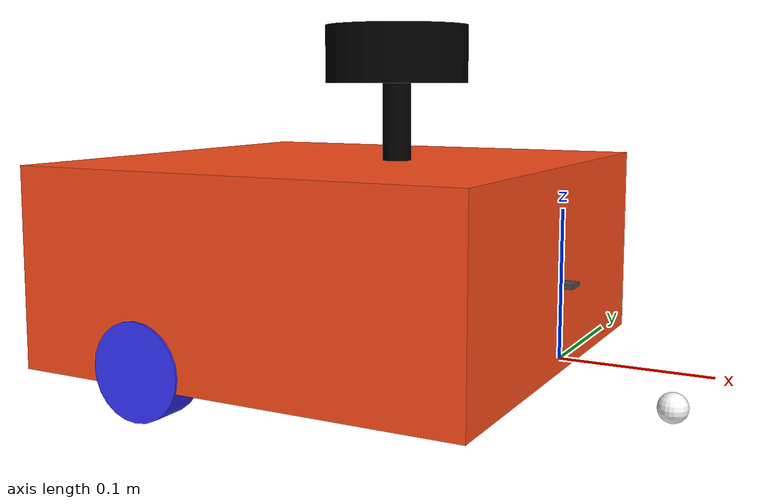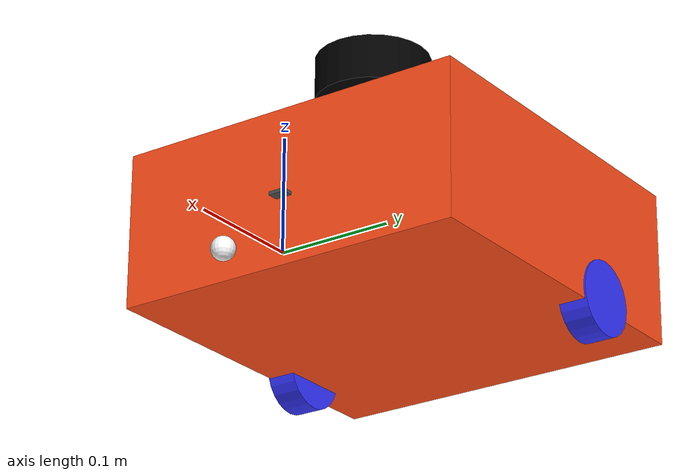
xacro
<?xml version="1.0"?>
<robot xmlns:xacro="http://www.ros.org/wiki/xacro"  name="robot">

    <xacro:arg name="use_ros2_control" default="true"/>
    <xacro:arg name="sim_mode" default="false"/>

    <xacro:include filename="robot_core.xacro" />

    <xacro:if value="$(arg use_ros2_control)">
        <xacro:include filename="ros2_control.xacro" />
    </xacro:if>
    <xacro:unless value="$(arg use_ros2_control)">
        <xacro:include filename="gazebo_control.xacro" />
    </xacro:unless>

    <xacro:include filename="lidar.xacro" />

</robot>

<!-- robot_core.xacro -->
<robot xmlns:xacro="http://www.ros.org/wiki/xacro" >

    <xacro:include filename="inertial_macros.xacro"/>

    <xacro:property name="chassis_length" value="0.32"/>
    <xacro:property name="chassis_width" value="0.32"/>
    <xacro:property name="chassis_height" value="0.138"/>
    <xacro:property name="chassis_mass" value="1.0"/>
    <xacro:property name="wheel_radius" value="0.033"/>
    <xacro:property name="wheel_thickness" value="0.026"/>
    <xacro:property name="wheel_mass" value="0.05"/>
    <xacro:property name="wheel_offset_x" value="0.226"/>
    <xacro:property name="wheel_offset_y" value="0.1485"/>
    <xacro:property name="wheel_offset_z" value="0.01"/>
    <xacro:property name="caster_wheel_radius" value="0.01"/>
    <xacro:property name="caster_wheel_mass" value="0.01"/>
    <xacro:property name="caster_wheel_offset_x" value="0.075"/>
    <xacro:property name="caster_wheel_offset_z" value="${wheel_offset_z - wheel_radius + caster_wheel_radius}"/>

    <material name="white">
        <color rgba="1 1 1 1" />
    </material>

    <material name="orange">
        <color rgba="1 0.3 0.1 1"/>
    </material>

    <material name="blue">
        <color rgba="0.2 0.2 1 1"/>
    </material>

    <material name="black">
        <color rgba="0 0 0 1"/>
    </material>

    <material name="red">
        <color rgba="1 0 0 1"/>
    </material>

    <!-- BASE LINK -->

    <link name="base_link">

    </link>

    <!-- BASE_FOOTPRINT LINK -->

    <joint name="base_footprint_joint" type="fixed">
        <parent link="base_link"/>
        <child link="base_footprint"/>
        <origin xyz="0 0 0" rpy="0 0 0"/>
    </joint>

    <link name="base_footprint">
    </link>

    <!-- CHASSIS LINK -->
    <joint name="chassis_joint" type="fixed">
        <parent link="base_link"/>
        <child link="chassis"/>
        <origin xyz="0 0 ${-wheel_offset_z}" rpy="0 0 ${pi}" />
    </joint>

    <link name="chassis">
        <visual>
            <origin xyz="${chassis_length/2} 0 ${chassis_height/2}"/>
            <geometry>
                <box size="${chassis_length} ${chassis_width} ${chassis_height}"/>
            </geometry>
            <material name="orange"/>
        </visual>
        <collision>
            <origin xyz="${chassis_length/2} 0 ${chassis_height/2}"/>
            <geometry>
                <box size="${chassis_length} ${chassis_width} ${chassis_height}"/>
            </geometry>
        </collision>
        <xacro:inertial_box mass="0.5" x="${chassis_length}" y="${chassis_width}" z="${chassis_height}">
            <origin xyz="${chassis_length/2} 0 ${chassis_height/2}" rpy="0 0 0"/>
        </xacro:inertial_box>
    </link>

    <gazebo reference="chassis">
        <material>Gazebo/Orange</material>
    </gazebo>

    <!-- LEFT WHEEL LINK -->
    <joint name="left_wheel_joint" type="continuous">
        <parent link="base_link"/>
        <child link="left_wheel"/>
        <origin xyz="${-wheel_offset_x} ${wheel_offset_y} 0" rpy="-${pi/2} 0 0" />
        <axis xyz="0 0 1"/>
    </joint>

    <link name="left_wheel">
        <visual>
            <geometry>
                <cylinder radius="${wheel_radius}" length="${wheel_thickness}"/>
            </geometry>
            <material name="blue"/>
        </visual>
        <collision>
            <geometry>
                <sphere radius="${wheel_radius}"/>
            </geometry>
        </collision>
        <xacro:inertial_cylinder mass="${wheel_mass}" length="${wheel_thickness}" radius="${wheel_radius}">
            <origin xyz="0 0 0" rpy="0 0 0"/>
        </xacro:inertial_cylinder>
    </link>

    <gazebo reference="left_wheel">
        <material>Gazebo/Blue</material>
    </gazebo>

    <!-- RIGHT WHEEL LINK -->
    <joint name="right_wheel_joint" type="continuous">
        <parent link="base_link"/>
        <child link="right_wheel"/>
        <origin xyz="${-wheel_offset_x} ${-wheel_offset_y} 0" rpy="${pi/2} 0 0" />
        <axis xyz="0 0 -1"/>
    </joint>

    <link name="right_wheel">
        <visual>
            <geometry>
                <cylinder radius="${wheel_radius}" length="${wheel_thickness}"/>
            </geometry>
            <material name="blue"/>
        </visual>
        <collision>
            <geometry>
                <sphere radius="${wheel_radius}"/>
            </geometry>
        </collision>
        <xacro:inertial_cylinder mass="${wheel_mass}" length="${wheel_thickness}" radius="${wheel_radius}">
            <origin xyz="0 0 0" rpy="0 0 0"/>
        </xacro:inertial_cylinder>
    </link>

    <gazebo reference="right_wheel">
        <material>Gazebo/Blue</material>
    </gazebo>

    <!-- CASTER WHEEL LINK -->
    <joint name="caster_wheel_joint" type="fixed">
        <parent link="chassis"/>
        <child link="caster_wheel"/>
        <origin xyz="${-caster_wheel_offset_x} 0 ${caster_wheel_offset_z}"/>
    </joint>

    <link name="caster_wheel">
        <visual>
            <geometry>
                <sphere radius="${caster_wheel_radius}"/>
            </geometry>
            <material name="white"/>
        </visual>
        <collision>
            <geometry>
                <sphere radius="${caster_wheel_radius}"/>
            </geometry>
        </collision>
        <xacro:inertial_sphere mass="${caster_wheel_mass}" radius="${caster_wheel_radius}">
            <origin xyz="0 0 0" rpy="0 0 0"/>
        </xacro:inertial_sphere>
    </link>

    <gazebo reference="caster_wheel">
        <material>Gazebo/White</material>
        <mu1 value="0.001"/>
        <mu2 value="0.001"/>
    </gazebo>

    <xacro:include filename="imu.xacro"/>
    <xacro:imu_sensor prefix=""/>

</robot>

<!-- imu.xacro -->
<robot xmlns:xacro="http://www.ros.org/wiki/xacro">

    <!-- IMU (MPU6050) Sensor -->
    <xacro:macro name="imu_sensor" params="prefix">

        <!-- IMU Link -->
        <link name="${prefix}imu_link">
            <visual>
                <origin xyz="0 0 0" rpy="0 0 0"/>
                <geometry>
                    <box size="0.02 0.015 0.003"/>
                </geometry>
                <material name="dark_grey">
                    <color rgba="0.3 0.3 0.3 1.0"/>
                </material>
            </visual>

            <collision>
                <origin xyz="0 0 0" rpy="0 0 0"/>
                <geometry>
                    <box size="0.02 0.015 0.003"/>
                </geometry>
            </collision>

            <inertial>
                <origin xyz="0 0 0" rpy="0 0 0"/>
                <mass value="0.001"/>
                <inertia ixx="1e-6" ixy="0" ixz="0" iyy="1e-6" iyz="0" izz="1e-6"/>
            </inertial>
        </link>

        <!-- IMU Joint (typically fixed to base_link) -->
        <joint name="${prefix}imu_joint" type="fixed">
            <parent link="base_link"/>
            <child link="${prefix}imu_link"/>
            <!-- Adjust these coordinates based on where you mount the MPU6050 -->
            <origin xyz="0.0 0.0 0.05" rpy="0 0 0"/>
        </joint>

        <!-- Gazebo Plugin for IMU -->
        <gazebo reference="${prefix}imu_link">
            <sensor name="imu_sensor" type="imu">
                <plugin filename="libgazebo_ros_imu_sensor.so" name="imu_plugin">
                    <ros>
                        <namespace>/</namespace>
                        <remapping>~/out:=imu/data</remapping>
                    </ros>
                    <initial_orientation_as_reference>false</initial_orientation_as_reference>
                </plugin>
                <always_on>true</always_on>
                <update_rate>100</update_rate>
                <visualize>true</visualize>
                <imu>
                    <angular_velocity>
                        <x>
                            <noise type="gaussian">
                                <mean>0.0</mean>
                                <stddev>2e-4</stddev>
                                <bias_mean>0.0000075</bias_mean>
                                <bias_stddev>0.0000008</bias_stddev>
                            </noise>
                        </x>
                        <y>
                            <noise type="gaussian">
                                <mean>0.0</mean>
                                <stddev>2e-4</stddev>
                                <bias_mean>0.0000075</bias_mean>
                                <bias_stddev>0.0000008</bias_stddev>
                            </noise>
                        </y>
                        <z>
                            <noise type="gaussian">
                                <mean>0.0</mean>
                                <stddev>2e-4</stddev>
                                <bias_mean>0.0000075</bias_mean>
                                <bias_stddev>0.0000008</bias_stddev>
                            </noise>
                        </z>
                    </angular_velocity>
                    <linear_acceleration>
                        <x>
                            <noise type="gaussian">
                                <mean>0.0</mean>
                                <stddev>1.7e-2</stddev>
                                <bias_mean>0.1</bias_mean>
                                <bias_stddev>0.001</bias_stddev>
                            </noise>
                        </x>
                        <y>
                            <noise type="gaussian">
                                <mean>0.0</mean>
                                <stddev>1.7e-2</stddev>
                                <bias_mean>0.1</bias_mean>
                                <bias_stddev>0.001</bias_stddev>
                            </noise>
                        </y>
                        <z>
                            <noise type="gaussian">
                                <mean>0.0</mean>
                                <stddev>1.7e-2</stddev>
                                <bias_mean>0.1</bias_mean>
                                <bias_stddev>0.001</bias_stddev>
                            </noise>
                        </z>
                    </linear_acceleration>
                </imu>
            </sensor>
        </gazebo>

    </xacro:macro>

</robot>

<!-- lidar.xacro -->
<robot xmlns:xacro="http://www.ros.org/wiki/xacro" >

    <joint name="laser_joint" type="fixed">
        <parent link="chassis"/>
        <child link="laser_frame"/>
        <origin xyz="0.122 0 0.212" rpy="0 0 0"/>
    </joint>

    <link name="laser_frame">
        <visual>
            <geometry>
                <cylinder radius="0.05" length="0.04"/>
            </geometry>
            <material name="black"/>
        </visual>
        <visual>
            <origin xyz="0 0 -0.05"/>
            <geometry>
                <cylinder radius="0.01" length="0.1"/>
            </geometry>
            <material name="black"/>
        </visual>
        <collision>
            <geometry>
                <cylinder radius="0.05" length="0.04"/>
            </geometry>
        </collision>
        <xacro:inertial_cylinder mass="0.1" length="0.04" radius="0.05">
            <origin xyz="0 0 0" rpy="0 0 0"/>
        </xacro:inertial_cylinder>
    </link>

    <gazebo reference="laser_frame">
        <material>Gazebo/Black</material>

        <sensor name="lidar_sensor" type="gpu_lidar">
            <topic>scan</topic>

            <pose> 0 0 0 0 0 0 </pose>
            <visualize>true</visualize>
            <update_rate>10</update_rate>
            <always_on>true</always_on>

            <lidar>
                <scan>
                    <horizontal>
                        <samples>360</samples>
                        <min_angle>-3.14</min_angle>
                        <max_angle>3.14</max_angle>
                    </horizontal>
                </scan>
                <range>
                    <min>0.3</min>
                    <max>12</max>
                </range>
            </lidar>

            <gz_frame_id>laser_frame</gz_frame_id>
        </sensor>
    </gazebo>

</robot>
